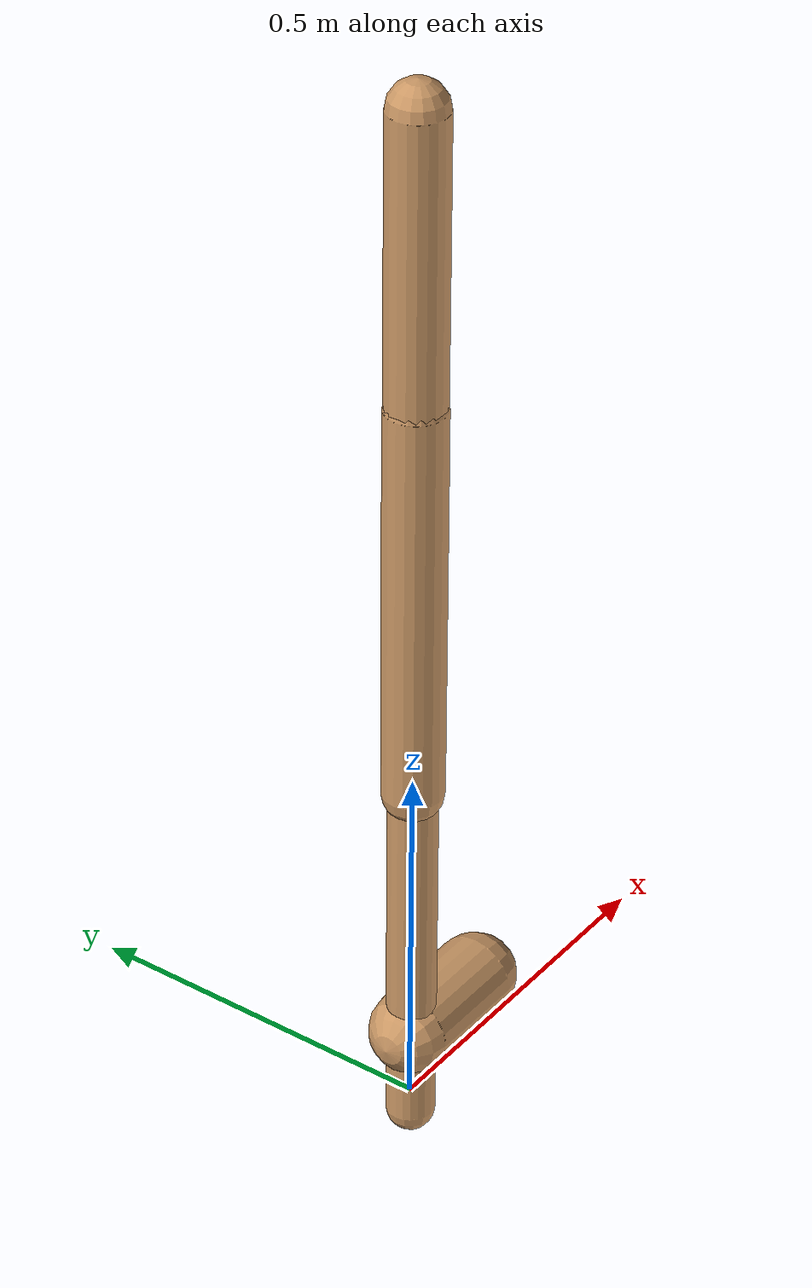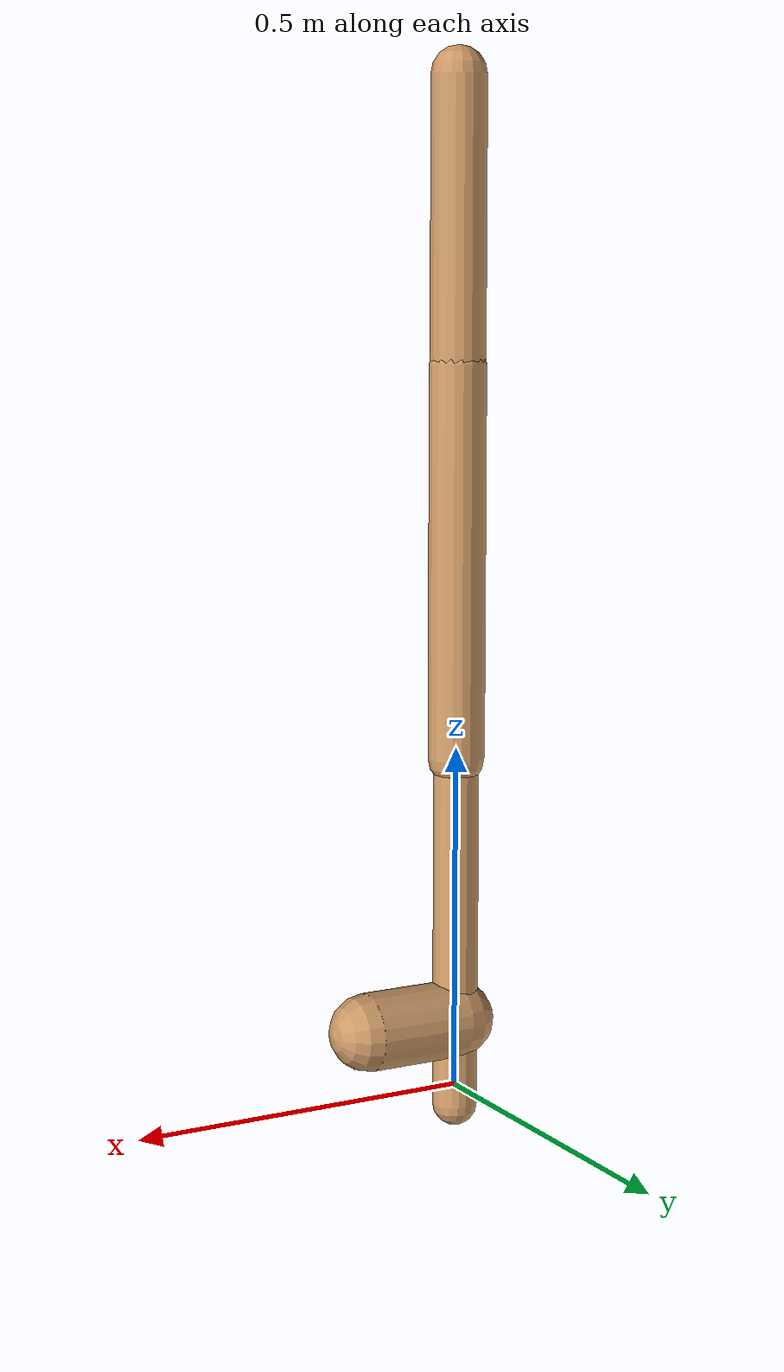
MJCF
<mujoco model="walker2d">
  <compiler angle="degree" coordinate="global" inertiafromgeom="true" />
  <default>
    <joint armature="0.01" damping=".1" limited="true" />
    <geom conaffinity="0" condim="3" contype="1" density="1000" friction="0.8 .1 .1" rgba="0.8 0.6 .4 1" />
  </default>
  <option integrator="RK4" timestep="0.002" />
  <worldbody>

    <body name="torso" pos="0 0 0.24022382631771808">
      <joint armature="0" axis="1 0 0" damping="0" limited="false" name="ignorex" pos="0 0 0" stiffness="0" type="slide" />
      <joint armature="0" axis="0 0 1" damping="0" limited="false" name="ignorez" pos="0 0 0" ref="1.25" stiffness="0" type="slide" />
      <joint armature="0" axis="0 1 0" damping="0" limited="false" name="ignorey" pos="0 0 0" stiffness="0" type="hinge" />
      <geom fromto="0 0 1.45 0 0 1.05" name="torso_geom" size="0.03963430432521508" type="capsule" />
      <body name="thigh">
        <joint axis="0 -1 0" name="thigh_joint" pos="0 0 1.05" range="-150 0" type="hinge" />
        <geom fromto="0.0 0.0 1.05 0.0 0.0 0.4862097664810809" name="thigh_geom" size="0.04074535407819966" type="capsule" />
        <body name="leg" pos="0.0 0.0 -0.11379023351891909">
          <joint axis="0 -1 0" name="leg_joint" pos="0 0 0.6" range="-150 0" type="hinge" />
          <geom fromto="0.0 0.0 0.6 0.0 0.0 -0.026433592798798977" name="leg_geom" size="0.03259628326255973" type="capsule" />
          <body name="foot" pos="0.0 0.0 -0.12643359279879898">
            <joint axis="0 -1 0" name="foot_joint" pos="0 0 0.1" range="-45 45" type="hinge" />
            <geom fromto="0.0 0.0 0.1 0.14422772146861745 0.0 0.1" name="foot_geom" size="0.05580482286667428" type="capsule" />
          </body>
        </body>
      </body>

      <body name="thigh_left">
        <joint axis="0 -1 0" name="thigh_left_joint" pos="0 0 1.05" range="-150 0" type="hinge" />
        <geom fromto="0.0 0.0 1.05 0.0 0.0 0.4862097664810809" name="thigh_left_geom" rgba=".7 .3 .6 1" size="0.04074535407819966" type="capsule" />
        <body name="leg_left" pos="0.0 0.0 -0.11379023351891909">
          <joint axis="0 -1 0" name="leg_left_joint" pos="0 0 0.6" range="-150 0" type="hinge" />
          <geom fromto="0.0 0.0 0.6 0.0 0.0 -0.026433592798798977" name="leg_left_geom" rgba=".7 .3 .6 1" size="0.03259628326255973" type="capsule" />
          <body name="foot_left" pos="0.0 0.0 -0.12643359279879898">
            <joint axis="0 -1 0" name="foot_left_joint" pos="0 0 0.1" range="-45 45" type="hinge" />
            <geom fromto="0.0 0.0 0.1 0.14422772146861745 0.0 0.1" name="foot_left_geom" rgba=".7 .3 .6 1" size="0.05580482286667428" type="capsule" />
          </body>
        </body>
      </body>
    </body>
  </worldbody>
  <actuator>

    <motor ctrllimited="true" ctrlrange="-1.0 1.0" gear="100" joint="thigh_joint" />
    <motor ctrllimited="true" ctrlrange="-1.0 1.0" gear="100" joint="leg_joint" />
    <motor ctrllimited="true" ctrlrange="-1.0 1.0" gear="100" joint="foot_joint" />
    <motor ctrllimited="true" ctrlrange="-1.0 1.0" gear="100" joint="thigh_left_joint" />
    <motor ctrllimited="true" ctrlrange="-1.0 1.0" gear="100" joint="leg_left_joint" />
    <motor ctrllimited="true" ctrlrange="-1.0 1.0" gear="100" joint="foot_left_joint" />

  </actuator>
</mujoco>
